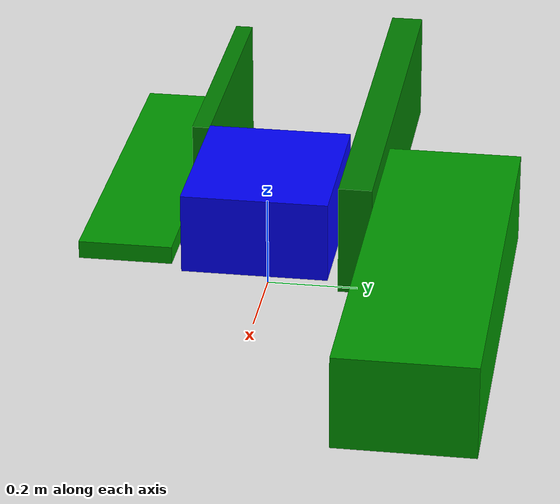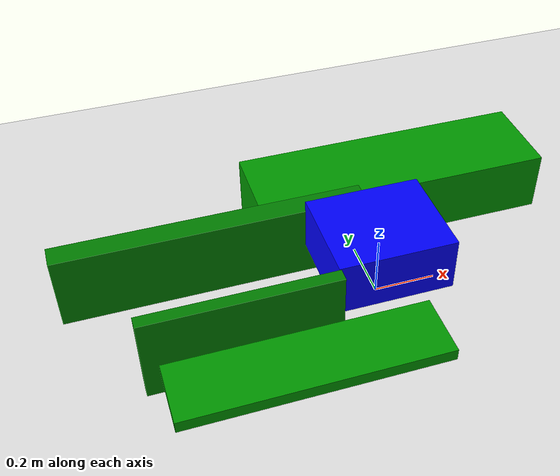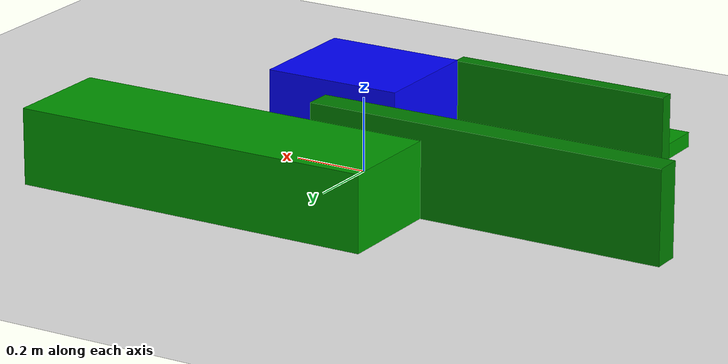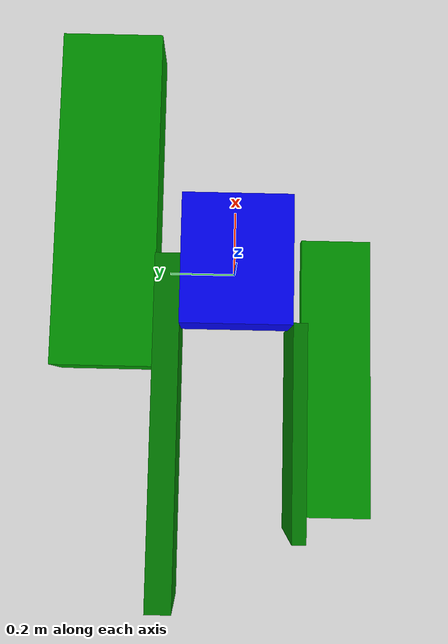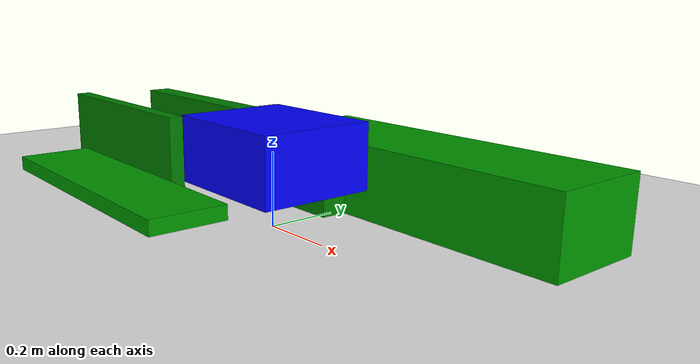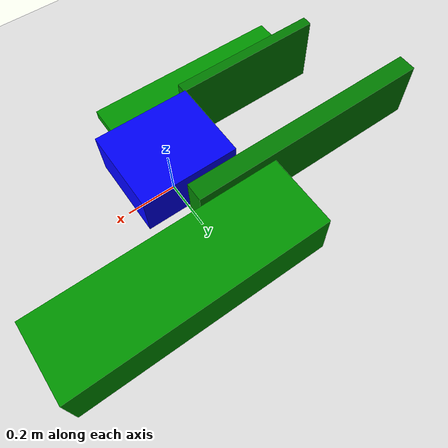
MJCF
<mujoco>
    <worldbody>
    <light diffuse=".5 .5 .5" pos="0 0 3" dir="0 0 -1"/>
    <geom type="plane" size="5 5 0.1" rgba=".9 0.9 0.9 1"/>
    <body name="main body" pos="0 0 .2">
        <joint type="free"/>
        <geom type="box" size="0.18622804523356223 0.15953373436601853 0.08920945230724807" rgba="0 0 1 1" mass="1"/>
        <site name="marker" pos="0 0 0" size="0.05"/>
        <site name="robot_center" pos="0 0 0" size="0.01"/>
        <body name="left_leg1" pos="-0.48 0.19685593305661847 -0.1">
            <joint name="left_leg1_joint" type="hinge" axis="0 1 0" pos="0 0 0"/>
            <geom type="box" size="0.49782655708640206 0.03732219869059995 0.15" rgba="0 .5 0 1" mass="2"/>
            <body name="left_leg2" pos="0.6742624747515208 0.18732219869059996 -0.04">
                <joint name="left_leg2_joint" type="hinge" axis="0 1 0" pos="0 0 0"/>
                <geom type="box" size="0.5 0.15 0.1442418682754296" rgba="0 .6 0 1" mass="2"/>
            </body>
        </body>
        <body name="right_leg1" pos="-0.48 -0.17953373436601852 -0.06338135517570519">
            <joint name="right_leg1_joint" type="hinge" axis="0 1 0" pos="0 0 0"/>
            <geom type="box" size="0.3 0.02 0.15" rgba="0 .5 0 1" mass="2"/>
            <body name="right_leg2" pos="0.15932721294710822 -0.12401379108740093 -0.04">
                <joint name="right_leg2_joint" type="hinge" axis="0 1 0" pos="0 0 0"/>
                <geom type="box" size="0.4109331957593677 0.10401379108740093 0.02" rgba="0 .6 0 1" mass="2"/>
            </body>
        </body>
    </body>
    </worldbody>
    <sensor>
        <framepos objtype="site" objname="marker"/>
        <velocimeter name="robot_velocity" site="robot_center"/>
    </sensor>
    <actuator>
        <position joint="left_leg1_joint" kp="10"/>
        <position joint="left_leg2_joint" kp="10"/>
        <position joint="right_leg1_joint" kp="10"/>
        <position joint="right_leg2_joint" kp="10"/>
    </actuator>
</mujoco>
